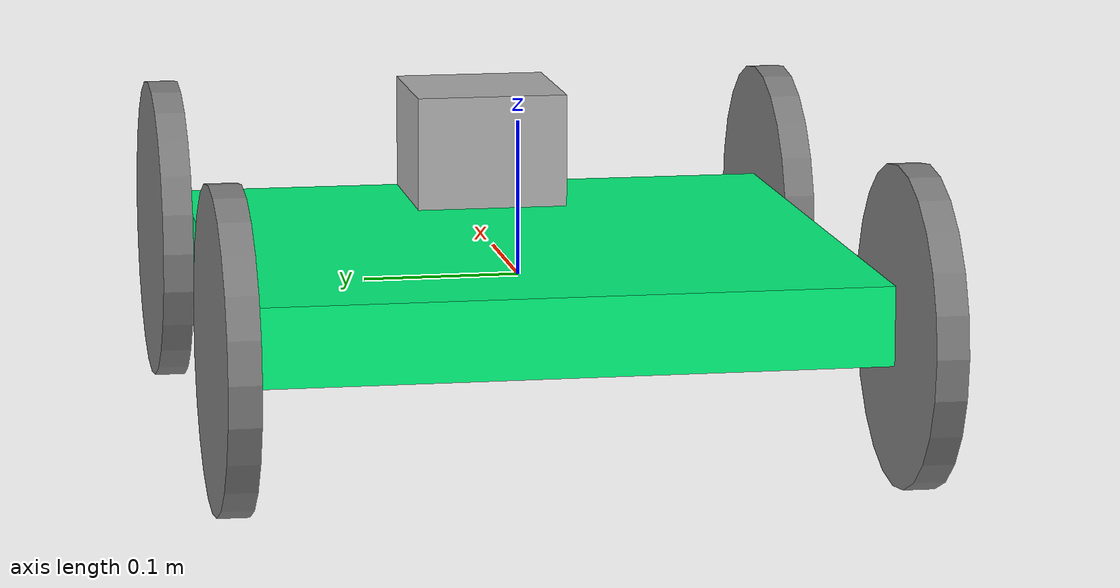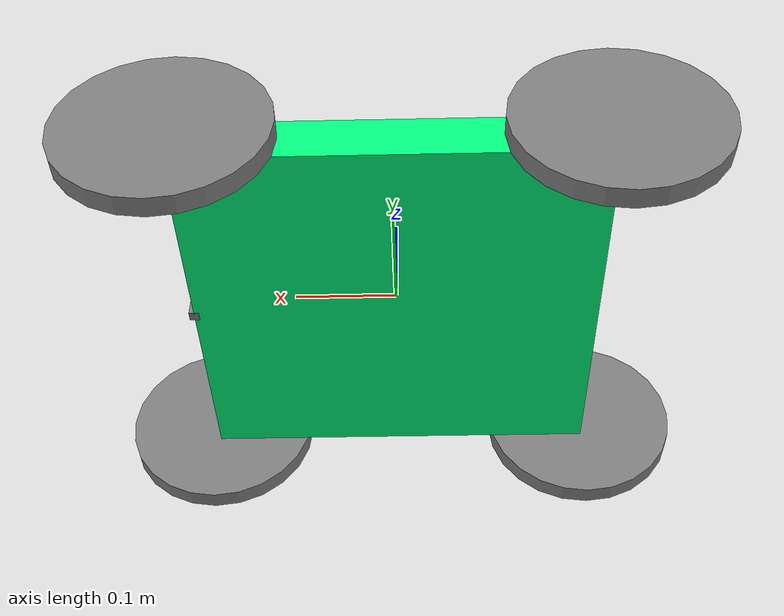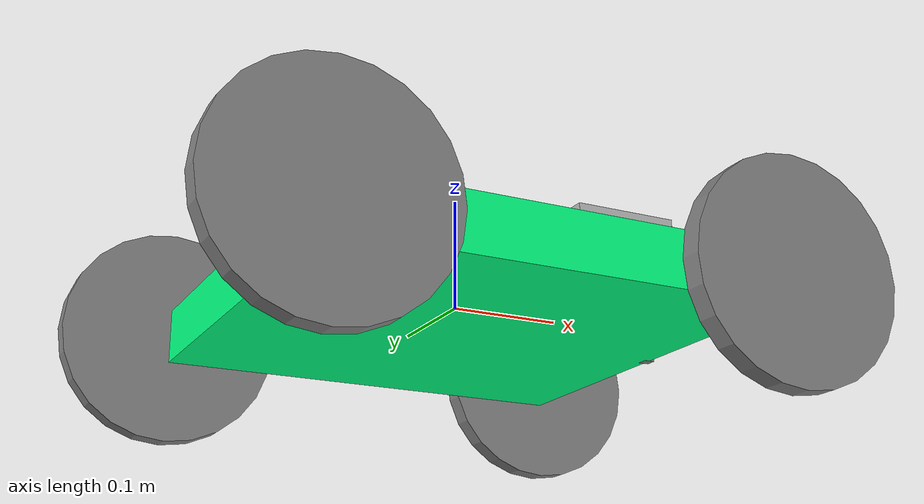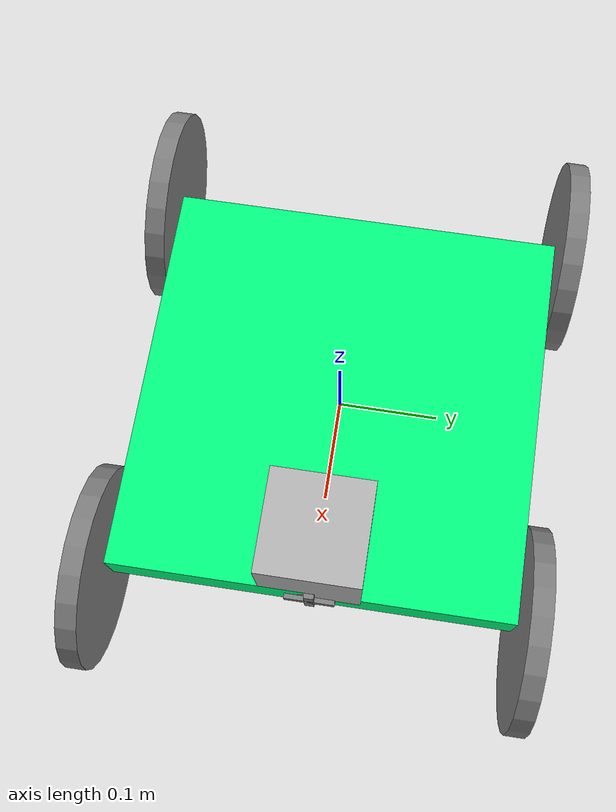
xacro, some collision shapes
<?xml version='1.0'?>

<robot name="my_robot" xmlns:xacro="http://www.ros.org/wiki/xacro">

  <xacro:include filename="$(find my_robot)/urdf/my_robot.gazebo" />
  <link name="robot_footprint"></link>

  <material name="gray">
    <color rgba="0.5 0.5 0.5 1"/>
  </material>

  <material name="green">
    <color rgba="0 1 0.5 1"/>
  </material>

  <joint name="robot_footprint_joint" type="fixed">
    <origin xyz="0 0 0" rpy="0 0 0" />
    <parent link="robot_footprint"/>
    <child link="chassis" />
  </joint>

  <link name='chassis'>
    <pose>0 0 0.1 0 0 0</pose>

    <inertial>
      <mass value="10.0"/>
      <origin xyz="0.0 0 0" rpy=" 0 0 0"/>
      <inertia
          ixx="0.1" ixy="0" ixz="0"
          iyy="0.1" iyz="0"
          izz="0.1"
      />
    </inertial>

    <collision name='collision'>
      <origin xyz="0 0 0" rpy=" 0 0 0"/>
      <geometry>
        <box size=".4 .4 .05"/>
      </geometry>
    </collision>

    <visual name='chassis_visual'>
      <origin xyz="0 0 0" rpy=" 0 0 0"/>
      <geometry>
        <box size=".4 .4 .05"/>
      </geometry>
      <material name="green"/>
    </visual>

  </link>

  <link name='left_rear_wheel'>
    <inertial>
      <mass value = "5.0"/>
      <origin xyz= "0 0 0" rpy="0 1.5707 1.5707"/>
      <inertia
        ixx="0.1" ixy="0" ixz="0"
        iyy="0.1" iyz="0"
        izz="0.1"
      />
    </inertial>

    <visual>
      <origin xyz= "0 0 0" rpy="0 1.5707 1.5707"/>
      <geometry>
        <cylinder length="0.02" radius="0.1"/>
      </geometry>
      <material name="gray"/>
    </visual>

    <collision>
      <origin xyz= "0 0 0" rpy="0 1.5707 1.5707"/>
      <geometry>
        <cylinder length="0.02" radius="0.1"/>
      </geometry>
    </collision>

  </link>

  <link name='left_front_wheel'>
    <inertial>
      <mass value = "5.0"/>
      <origin xyz= "0 0 0" rpy="0 1.5707 1.5707"/>
      <inertia
        ixx="0.1" ixy="0" ixz="0"
        iyy="0.1" iyz="0"
        izz="0.1"
      />
    </inertial>

    <visual>
      <origin xyz= "0 0 0" rpy="0 1.5707 1.5707"/>
      <geometry>
        <cylinder length="0.02" radius="0.1"/>
      </geometry>
      <material name="gray"/>
    </visual>

    <collision>
      <origin xyz= "0 0 0" rpy="0 1.5707 1.5707"/>
      <geometry>
        <cylinder length="0.02" radius="0.1"/>
      </geometry>
    </collision>

  </link>

  <link name='right_rear_wheel'>
    <inertial>
      <mass value = "5.0"/>
      <origin xyz= "0 0 0" rpy="0 1.5707 1.5707"/>
      <inertia
        ixx="0.1" ixy="0" ixz="0"
        iyy="0.1" iyz="0"
        izz="0.1"
      />
    </inertial>

    <visual>
      <origin xyz= "0 0 0" rpy="0 1.5707 1.5707"/>
      <geometry>
        <cylinder length="0.02" radius="0.1"/>
      </geometry>
      <material name="gray"/>
    </visual>

    <collision>
      <origin xyz= "0 0 0" rpy="0 1.5707 1.5707"/>
      <geometry>
        <cylinder length="0.02" radius="0.1"/>
      </geometry>
    </collision>

  </link>

  <link name='right_front_wheel'>
    <inertial>
      <mass value = "5.0"/>
      <origin xyz= "0 0 0" rpy="0 1.5707 1.5707"/>
      <inertia
        ixx="0.1" ixy="0" ixz="0"
        iyy="0.1" iyz="0"
        izz="0.1"
      />
    </inertial>

    <visual>
      <origin xyz= "0 0 0" rpy="0 1.5707 1.5707"/>
      <geometry>
        <cylinder length="0.02" radius="0.1"/>
      </geometry>
      <material name="gray"/>
    </visual>

    <collision>
      <origin xyz= "0 0 0" rpy="0 1.5707 1.5707"/>
      <geometry>
        <cylinder length="0.02" radius="0.1"/>
      </geometry>
    </collision>

  </link>

  <joint type="continuous" name="left_wheel_front_hinge">
    <origin xyz="0.2 0.21 0" rpy="0 0 0"/>
    <child link="left_front_wheel"/>
    <parent link="chassis"/>
    <axis xyz="0 1 0" rpy="0 0 0"/>
    <limit effort="10000" velocity="1000"/>
    <dynamics damping="1.0" friction="1.0"/>
  </joint>

  <joint type="continuous" name="left_wheel_rear_hinge">
    <origin xyz="-0.2 0.21 0" rpy="0 0 0"/>
    <child link="left_rear_wheel"/>
    <parent link="chassis"/>
    <axis xyz="0 1 0" rpy="0 0 0"/>
    <limit effort="10000" velocity="1000"/>
    <dynamics damping="1.0" friction="1.0"/>
  </joint>

  <joint type="continuous" name="right_wheel_front_hinge">
    <origin xyz="0.2 -0.21 0" rpy="0 0 0"/>
    <child link="right_front_wheel"/>
    <parent link="chassis"/>
    <axis xyz="0 1 0" rpy="0 0 0"/>
    <limit effort="10000" velocity="1000"/>
    <dynamics damping="1.0" friction="1.0"/>
  </joint>

  <joint type="continuous" name="right_wheel_rear_hinge">
    <origin xyz="-0.2 -0.21 0" rpy="0 0 0"/>
    <child link="right_rear_wheel"/>
    <parent link="chassis"/>
    <axis xyz="0 1 0" rpy="0 0 0"/>
    <limit effort="10000" velocity="1000"/>
    <dynamics damping="1.0" friction="1.0"/>
  </joint>

  <link name='camera'>
    <inertial>
      <mass value="0.1"/>
      <origin xyz="0 0 0" rpy="0 0 0"/>
      <box_inertia m="0.1" x = "0.05" y ="0.05" z="0.05"/>
      <inertia
        ixx="1e-6" ixy="0" ixz="0"
        iyy="1e-6" iyz="0"
        izz="1e-6"
      />
    </inertial>

    <visual>
      <origin xyz="0 0 0" rpy="0 0 0"/>
      <geometry>
        <box size="0.01 0.05 0.01"/>
      </geometry>
      <material name="gray"/>
    </visual>

    <collision>
      <origin xyz="0 0 0" rpy="0 0 0"/>
      <geometry>
        <box size="0.01 0.01 0.05"/>
      </geometry>
    </collision>
  </link>

  <joint type="fixed" name="camera_joint">
    <origin xyz="0.2 0 0" rpy="0 0 0"/>
    <child link="camera"/>
    <parent link="chassis"/>
    <axis xyz="0 1 0" rpy="0 0 0"/>
  </joint>

  <link name="hokuyo">
    <inertial>
      <mass value="1e-5"/>
      <origin xyz="0 0 0" rpy="0 0 0"/>
      <inertia
        ixx="1e-6" ixy="0" ixz="0"
        iyy="1e-6" iyz="0"
        izz="1e-6"
      />
    </inertial>

    <visual>
      <origin xyz="0 0 0" rpy="0 0 0"/>
      <geometry>
        <mesh filename="package://my_robot/meshes/hokuyo.dae"/>
      </geometry>
    </visual>

    <collision>
      <origin xyz="0 0 0" rpy="0 0 0"/>
      <geometry>
        <box size="0.1 0.1 0.1"/>
      </geometry>
    </collision>
  </link>

  <joint type="fixed" name="hokuyo_joint">
    <origin xyz="0.15 0 0.05" rpy="0 0 0"/>
    <child link="hokuyo"/>
    <parent link="chassis"/>
    <axis xyz="0 1 0" rpy="0 0 0"/>
  </joint>

  <joint name="camera_optical_joint" type="fixed">
    <origin xyz="0 0 0" rpy="-1.5707 0 -1.5707"/>
    <parent link="camera"/>
    <child link="camera_link_optical"/>
  </joint>

  <link name="camera_link_optical">
    <inertial>
      <mass value="0.1"/>
      <origin xyz="0 0 0" rpy="0 0 0"/>
      <box_inertia m="0.1" x = "0.05" y ="0.05" z="0.05"/>
      <inertia
        ixx="1e-6" ixy="0" ixz="0"
        iyy="1e-6" iyz="0"
        izz="1e-6"
      />
    </inertial>

    <visual>
      <origin xyz="0 0 0" rpy="0 0 0"/>
      <geometry>
        <box size="0.01 0.05 0.01"/>
      </geometry>
      <material name="gray"/>
    </visual>

    <collision>
      <origin xyz="0 0 0" rpy="0 0 0"/>
      <geometry>
        <box size="0.01 0.01 0.05"/>
      </geometry>
    </collision>
  </link>

</robot>
